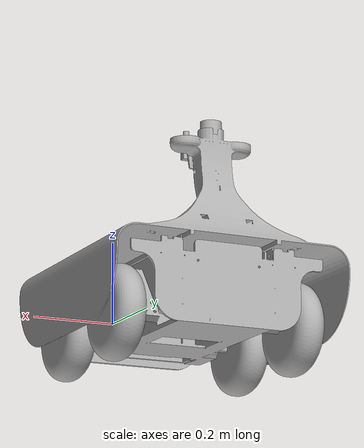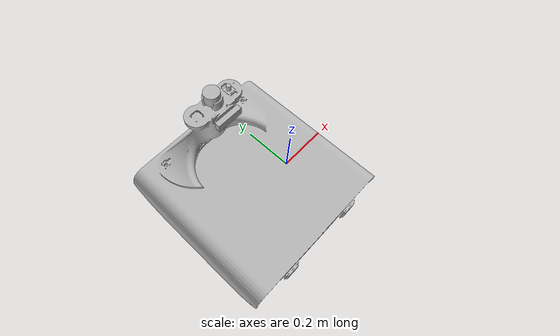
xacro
<?xml version="1.0" ?>
<robot name="URDF_ROBBOX" xmlns:xacro="http://www.ros.org/wiki/xacro">

<xacro:include filename="$(find URDF_ROBBOX_description)/urdf/materials.xacro" />
<xacro:include filename="$(find URDF_ROBBOX_description)/urdf/URDF_ROBBOX.trans" />
<xacro:include filename="$(find URDF_ROBBOX_description)/urdf/URDF_ROBBOX.gazebo" />
<link name="base_link">
  <inertial>
    <origin xyz="-0.18002333793623312 0.026489651804313053 0.11170444005390669" rpy="0 0 0"/>
    <mass value="63.140006731450704"/>
    <inertia ixx="2.85111" iyy="1.941217" izz="3.669589" ixy="-0.0018" iyz="-0.297833" ixz="-0.001666"/>
  </inertial>
  <visual>
    <origin xyz="0 0 0" rpy="0 0 0"/>
    <geometry>
      <mesh filename="package://URDF_ROBBOX_description/meshes/base_link.stl" scale="0.001 0.001 0.001"/>
    </geometry>
    <material name="silver"/>
  </visual>
  <collision>
    <origin xyz="0 0 0" rpy="0 0 0"/>
    <geometry>
      <mesh filename="package://URDF_ROBBOX_description/meshes/base_link.stl" scale="0.001 0.001 0.001"/>
    </geometry>
  </collision>
</link>

<link name="camera_rpi_1">
  <inertial>
    <origin xyz="-5.7124881908121594e-09 -3.038944734745641e-08 0.008386121687044501" rpy="0 0 0"/>
    <mass value="0.029114258669862954"/>
    <inertia ixx="2e-06" iyy="2e-06" izz="1e-06" ixy="-0.0" iyz="-0.0" ixz="0.0"/>
  </inertial>
  <visual>
    <origin xyz="0.115 -0.171194 -0.429" rpy="0 0 0"/>
    <geometry>
      <mesh filename="package://URDF_ROBBOX_description/meshes/camera_rpi_1.stl" scale="0.001 0.001 0.001"/>
    </geometry>
    <material name="silver"/>
  </visual>
  <collision>
    <origin xyz="0.115 -0.171194 -0.429" rpy="0 0 0"/>
    <geometry>
      <mesh filename="package://URDF_ROBBOX_description/meshes/camera_rpi_1.stl" scale="0.001 0.001 0.001"/>
    </geometry>
  </collision>
</link>

<link name="lidar_1">
  <inertial>
    <origin xyz="-4.0530012918038594e-07 -3.4694122783007764e-07 0.018049999999999955" rpy="0 0 0"/>
    <mass value="0.60182943827698"/>
    <inertia ixx="0.000167" iyy="0.000167" izz="0.000203" ixy="-0.0" iyz="0.0" ixz="0.0"/>
  </inertial>
  <visual>
    <origin xyz="0.180331 -0.171338 -0.444" rpy="0 0 0"/>
    <geometry>
      <mesh filename="package://URDF_ROBBOX_description/meshes/lidar_1.stl" scale="0.001 0.001 0.001"/>
    </geometry>
    <material name="silver"/>
  </visual>
  <collision>
    <origin xyz="0.180331 -0.171338 -0.444" rpy="0 0 0"/>
    <geometry>
      <mesh filename="package://URDF_ROBBOX_description/meshes/lidar_1.stl" scale="0.001 0.001 0.001"/>
    </geometry>
  </collision>
</link>

<link name="camera_oak_1">
  <inertial>
    <origin xyz="3.860152281709439e-07 -0.008750067994356125 2.220446049250313e-16" rpy="0 0 0"/>
    <mass value="0.3500314999999997"/>
    <inertia ixx="3.2e-05" iyy="0.000264" izz="0.00025" ixy="0.0" iyz="-0.0" ixz="-0.0"/>
  </inertial>
  <visual>
    <origin xyz="0.180238 -0.116303 -0.4135" rpy="0 0 0"/>
    <geometry>
      <mesh filename="package://URDF_ROBBOX_description/meshes/camera_oak_1.stl" scale="0.001 0.001 0.001"/>
    </geometry>
    <material name="silver"/>
  </visual>
  <collision>
    <origin xyz="0.180238 -0.116303 -0.4135" rpy="0 0 0"/>
    <geometry>
      <mesh filename="package://URDF_ROBBOX_description/meshes/camera_oak_1.stl" scale="0.001 0.001 0.001"/>
    </geometry>
  </collision>
</link>

<link name="wheel_rear_left_1">
  <inertial>
    <origin xyz="0.03750000000000001 -1.4240049836522495e-07 -3.196217084376965e-07" rpy="0 0 0"/>
    <mass value="21.68159743475603"/>
    <inertia ixx="0.129466" iyy="0.073667" izz="0.073667" ixy="0.0" iyz="-0.0" ixz="-0.0"/>
  </inertial>
  <visual>
    <origin xyz="-0.015 -0.144329 0.003733" rpy="0 0 0"/>
    <geometry>
      <mesh filename="package://URDF_ROBBOX_description/meshes/wheel_rear_left_1.stl" scale="0.001 0.001 0.001"/>
    </geometry>
    <material name="silver"/>
  </visual>
  <collision>
    <origin xyz="-0.015 -0.144329 0.003733" rpy="0 0 0"/>
    <geometry>
      <mesh filename="package://URDF_ROBBOX_description/meshes/wheel_rear_left_1.stl" scale="0.001 0.001 0.001"/>
    </geometry>
  </collision>
</link>

<link name="wheel_front_left_1">
  <inertial>
    <origin xyz="0.03750000000000001 1.424004984207361e-07 -3.196217084376965e-07" rpy="0 0 0"/>
    <mass value="21.68159743475603"/>
    <inertia ixx="0.129466" iyy="0.073667" izz="0.073667" ixy="-0.0" iyz="-0.0" ixz="-0.0"/>
  </inertial>
  <visual>
    <origin xyz="-0.015 0.144329 0.003733" rpy="0 0 0"/>
    <geometry>
      <mesh filename="package://URDF_ROBBOX_description/meshes/wheel_front_left_1.stl" scale="0.001 0.001 0.001"/>
    </geometry>
    <material name="silver"/>
  </visual>
  <collision>
    <origin xyz="-0.015 0.144329 0.003733" rpy="0 0 0"/>
    <geometry>
      <mesh filename="package://URDF_ROBBOX_description/meshes/wheel_front_left_1.stl" scale="0.001 0.001 0.001"/>
    </geometry>
  </collision>
</link>

<link name="wheel_front_right_1">
  <inertial>
    <origin xyz="-0.037500289005600596 -1.1962063206638618e-07 -3.196217084168798e-07" rpy="0 0 0"/>
    <mass value="21.681597434756032"/>
    <inertia ixx="0.129466" iyy="0.073667" izz="0.073667" ixy="0.0" iyz="0.0" ixz="0.0"/>
  </inertial>
  <visual>
    <origin xyz="0.375967 0.143266 0.003733" rpy="0 0 0"/>
    <geometry>
      <mesh filename="package://URDF_ROBBOX_description/meshes/wheel_front_right_1.stl" scale="0.001 0.001 0.001"/>
    </geometry>
    <material name="silver"/>
  </visual>
  <collision>
    <origin xyz="0.375967 0.143266 0.003733" rpy="0 0 0"/>
    <geometry>
      <mesh filename="package://URDF_ROBBOX_description/meshes/wheel_front_right_1.stl" scale="0.001 0.001 0.001"/>
    </geometry>
  </collision>
</link>

<link name="wheel_rear_right_1">
  <inertial>
    <origin xyz="-0.03749999999999998 -1.4240049836522495e-07 -3.196217084376965e-07" rpy="0 0 0"/>
    <mass value="21.68159743475603"/>
    <inertia ixx="0.129466" iyy="0.073667" izz="0.073667" ixy="0.0" iyz="-0.0" ixz="-0.0"/>
  </inertial>
  <visual>
    <origin xyz="0.375 -0.144329 0.003733" rpy="0 0 0"/>
    <geometry>
      <mesh filename="package://URDF_ROBBOX_description/meshes/wheel_rear_right_1.stl" scale="0.001 0.001 0.001"/>
    </geometry>
    <material name="silver"/>
  </visual>
  <collision>
    <origin xyz="0.375 -0.144329 0.003733" rpy="0 0 0"/>
    <geometry>
      <mesh filename="package://URDF_ROBBOX_description/meshes/wheel_rear_right_1.stl" scale="0.001 0.001 0.001"/>
    </geometry>
  </collision>
</link>

<joint name="Rigid 1" type="fixed">
  <origin xyz="-0.115 0.171194 0.429" rpy="0 0 0"/>
  <parent link="base_link"/>
  <child link="camera_rpi_1"/>
</joint>

<joint name="Rigid 2" type="fixed">
  <origin xyz="-0.180331 0.171338 0.444" rpy="0 0 0"/>
  <parent link="base_link"/>
  <child link="lidar_1"/>
</joint>

<joint name="Rigid 3" type="fixed">
  <origin xyz="-0.180238 0.116303 0.4135" rpy="0 0 0"/>
  <parent link="base_link"/>
  <child link="camera_oak_1"/>
</joint>

<joint name="Revolute 4" type="continuous">
  <origin xyz="0.015 0.144329 -0.003733" rpy="0 0 0"/>
  <parent link="base_link"/>
  <child link="wheel_rear_left_1"/>
  <axis xyz="1.0 0.0 0.0"/>
</joint>

<joint name="Revolute 5" type="continuous">
  <origin xyz="0.015 -0.144329 -0.003733" rpy="0 0 0"/>
  <parent link="base_link"/>
  <child link="wheel_front_left_1"/>
  <axis xyz="1.0 0.0 0.0"/>
</joint>

<joint name="Revolute 6" type="continuous">
  <origin xyz="-0.375967 -0.143266 -0.003733" rpy="0 0 0"/>
  <parent link="base_link"/>
  <child link="wheel_front_right_1"/>
  <axis xyz="-1.0 -0.0 0.0"/>
</joint>

<joint name="Revolute 7" type="continuous">
  <origin xyz="-0.375 0.144329 -0.003733" rpy="0 0 0"/>
  <parent link="base_link"/>
  <child link="wheel_rear_right_1"/>
  <axis xyz="-1.0 0.0 0.0"/>
</joint>

</robot>

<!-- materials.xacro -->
<robot name="SIRIUSROVER_DX" xmlns:xacro="http://www.ros.org/wiki/xacro" >

<material name="silver">
  <color rgba="0.700 0.700 0.700 1.000"/>
</material>

</robot>

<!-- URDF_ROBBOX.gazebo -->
<robot name="URDF_ROBBOX" xmlns:xacro="http://www.ros.org/wiki/xacro" >

<xacro:property name="body_color" value="Gazebo/Silver" />

<gazebo>
  <plugin name="control" filename="libgazebo_ros_control.so"/>
</gazebo>
<gazebo reference="base_link">
  <material>${body_color}</material>
  <mu1>0.2</mu1>
  <mu2>0.2</mu2>
  <selfCollide>true</selfCollide>
  <gravity>true</gravity>
</gazebo>

<gazebo reference="camera_rpi_1">
  <material>${body_color}</material>
  <mu1>0.2</mu1>
  <mu2>0.2</mu2>
  <selfCollide>true</selfCollide>
</gazebo>

<gazebo reference="lidar_1">
  <material>${body_color}</material>
  <mu1>0.2</mu1>
  <mu2>0.2</mu2>
  <selfCollide>true</selfCollide>
</gazebo>

<gazebo reference="camera_oak_1">
  <material>${body_color}</material>
  <mu1>0.2</mu1>
  <mu2>0.2</mu2>
  <selfCollide>true</selfCollide>
</gazebo>

<gazebo reference="wheel_rear_left_1">
  <material>${body_color}</material>
  <mu1>0.2</mu1>
  <mu2>0.2</mu2>
  <selfCollide>true</selfCollide>
</gazebo>

<gazebo reference="wheel_front_left_1">
  <material>${body_color}</material>
  <mu1>0.2</mu1>
  <mu2>0.2</mu2>
  <selfCollide>true</selfCollide>
</gazebo>

<gazebo reference="wheel_front_right_1">
  <material>${body_color}</material>
  <mu1>0.2</mu1>
  <mu2>0.2</mu2>
  <selfCollide>true</selfCollide>
</gazebo>

<gazebo reference="wheel_rear_right_1">
  <material>${body_color}</material>
  <mu1>0.2</mu1>
  <mu2>0.2</mu2>
  <selfCollide>true</selfCollide>
</gazebo>

</robot>
